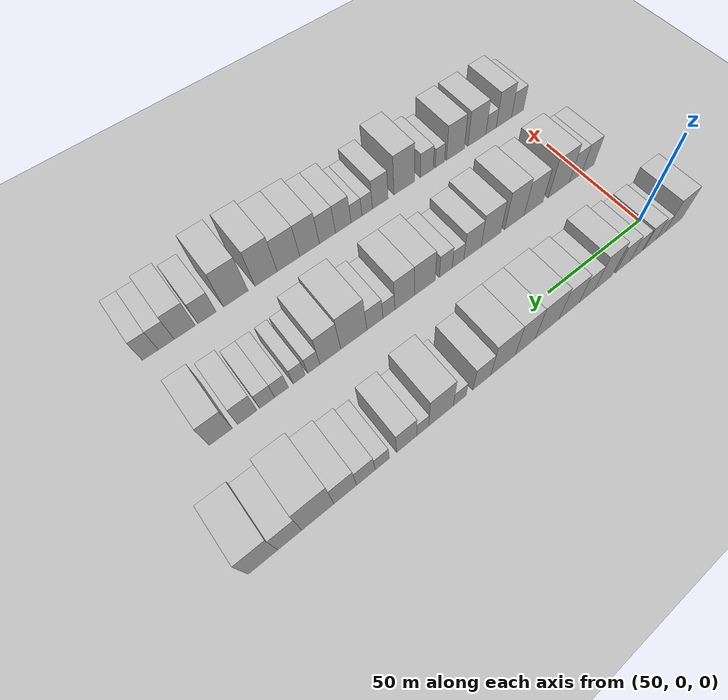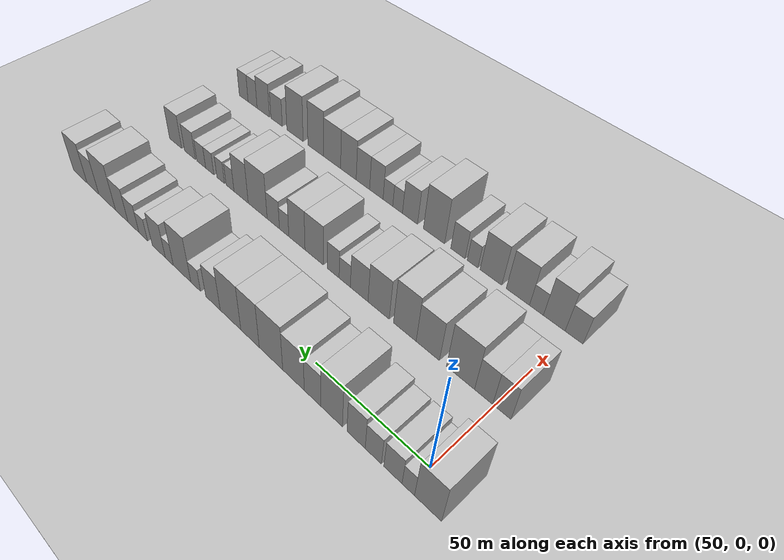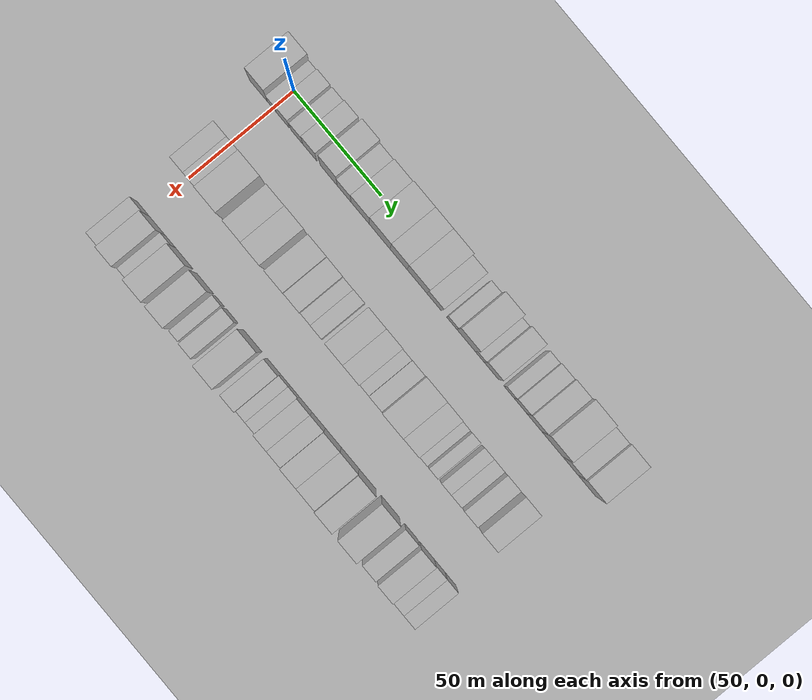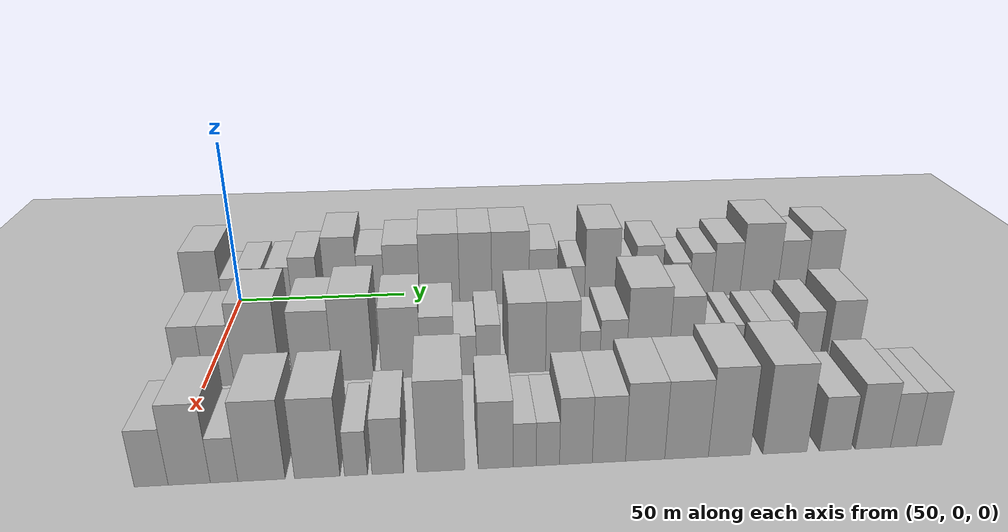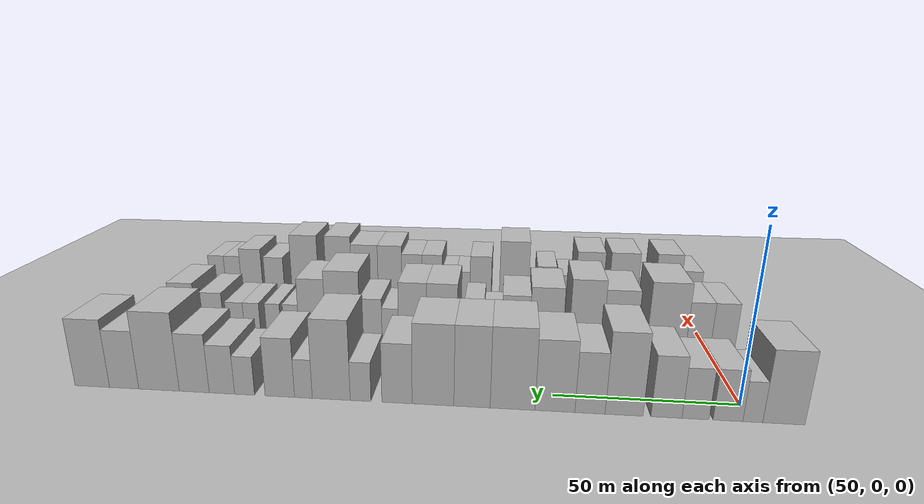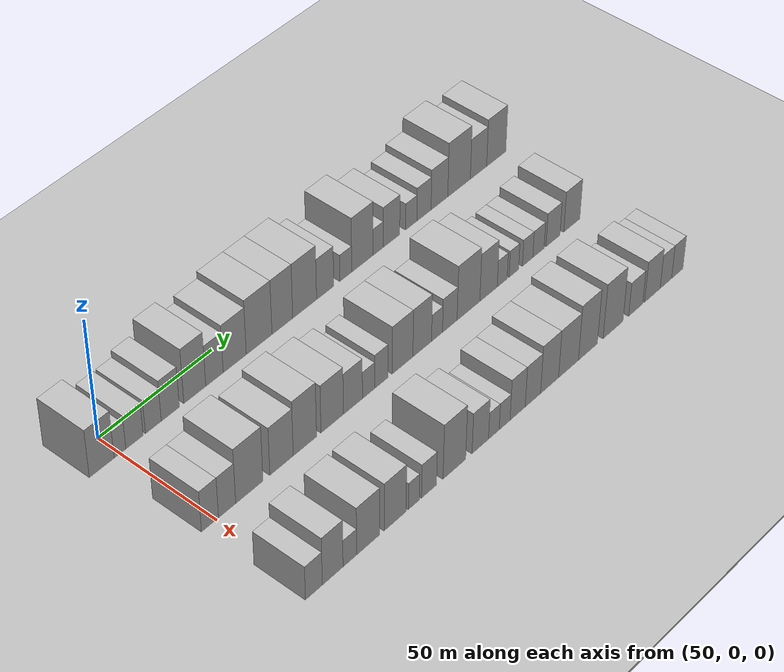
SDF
<sdf version="1.6">
 <world name="default">
  <include><name>ground_plane_1</name><uri>model://HANNAS_ground_plane</uri></include>
  <include>
   <name>ground_plane_2</name>
   <uri>model://HANNAS_ground_plane</uri>
   <pose>100 0 0  0 0 0</pose>
  </include>
  <model name="building_43">
   <static>1</static>
   <pose>50.0000 -8.0024 0 0.000000 0.000000 0.000000</pose>
   <link name="link">
    <pose>0 0 10.50 0 0 0</pose>
    <collision name="collision"><geometry><box><size>20.0000 10.3731 21.0000</size></box></geometry></collision>
    <visual name="visual">
     <cast_shadows>0</cast_shadows>
     <geometry><box><size>20.0000 10.3731 21.0000</size></box></geometry>
     <material>
      <script>
       <uri>model://HANNAS_wall/materials/scripts</uri>
       <uri>model://HANNAS_wall/materials/textures</uri>
       <name>vrc/HANNAS_wall</name>
      </script>
     </material>
    </visual>
   </link>
  </model>
  <model name="building_44">
   <static>1</static>
   <pose>50.0000 -0.3466 0 0.000000 0.000000 0.000000</pose>
   <link name="link">
    <pose>0 0 6.00 0 0 0</pose>
    <collision name="collision"><geometry><box><size>20.0000 4.9386 12.0000</size></box></geometry></collision>
    <visual name="visual">
     <cast_shadows>0</cast_shadows>
     <geometry><box><size>20.0000 4.9386 12.0000</size></box></geometry>
     <material>
      <script>
       <uri>model://HANNAS_wall/materials/scripts</uri>
       <uri>model://HANNAS_wall/materials/textures</uri>
       <name>vrc/HANNAS_wall</name>
      </script>
     </material>
    </visual>
   </link>
  </model>
  <model name="building_45">
   <static>1</static>
   <pose>50.0000 5.8194 0 0.000000 0.000000 0.000000</pose>
   <link name="link">
    <pose>0 0 7.50 0 0 0</pose>
    <collision name="collision"><geometry><box><size>20.0000 7.3933 15.0000</size></box></geometry></collision>
    <visual name="visual">
     <cast_shadows>0</cast_shadows>
     <geometry><box><size>20.0000 7.3933 15.0000</size></box></geometry>
     <material>
      <script>
       <uri>model://HANNAS_wall/materials/scripts</uri>
       <uri>model://HANNAS_wall/materials/textures</uri>
       <name>vrc/HANNAS_wall</name>
      </script>
     </material>
    </visual>
   </link>
  </model>
  <model name="building_46">
   <static>1</static>
   <pose>50.0000 13.9257 0 0.000000 0.000000 0.000000</pose>
   <link name="link">
    <pose>0 0 7.50 0 0 0</pose>
    <collision name="collision"><geometry><box><size>20.0000 6.8193 15.0000</size></box></geometry></collision>
    <visual name="visual">
     <cast_shadows>0</cast_shadows>
     <geometry><box><size>20.0000 6.8193 15.0000</size></box></geometry>
     <material>
      <script>
       <uri>model://HANNAS_wall/materials/scripts</uri>
       <uri>model://HANNAS_wall/materials/textures</uri>
       <name>vrc/HANNAS_wall</name>
      </script>
     </material>
    </visual>
   </link>
  </model>
  <model name="building_47">
   <static>1</static>
   <pose>50.0000 21.2796 0 0.000000 0.000000 0.000000</pose>
   <link name="link">
    <pose>0 0 9.00 0 0 0</pose>
    <collision name="collision"><geometry><box><size>20.0000 7.8884 18.0000</size></box></geometry></collision>
    <visual name="visual">
     <cast_shadows>0</cast_shadows>
     <geometry><box><size>20.0000 7.8884 18.0000</size></box></geometry>
     <material>
      <script>
       <uri>model://HANNAS_wall/materials/scripts</uri>
       <uri>model://HANNAS_wall/materials/textures</uri>
       <name>vrc/HANNAS_wall</name>
      </script>
     </material>
    </visual>
   </link>
  </model>
  <model name="building_48">
   <static>1</static>
   <pose>50.0000 32.0874 0 0.000000 0.000000 0.000000</pose>
   <link name="link">
    <pose>0 0 12.00 0 0 0</pose>
    <collision name="collision"><geometry><box><size>20.0000 9.7272 24.0000</size></box></geometry></collision>
    <visual name="visual">
     <cast_shadows>0</cast_shadows>
     <geometry><box><size>20.0000 9.7272 24.0000</size></box></geometry>
     <material>
      <script>
       <uri>model://HANNAS_wall/materials/scripts</uri>
       <uri>model://HANNAS_wall/materials/textures</uri>
       <name>vrc/HANNAS_wall</name>
      </script>
     </material>
    </visual>
   </link>
  </model>
  <model name="building_49">
   <static>1</static>
   <pose>50.0000 40.8598 0 0.000000 0.000000 0.000000</pose>
   <link name="link">
    <pose>0 0 9.00 0 0 0</pose>
    <collision name="collision"><geometry><box><size>20.0000 7.8177 18.0000</size></box></geometry></collision>
    <visual name="visual">
     <cast_shadows>0</cast_shadows>
     <geometry><box><size>20.0000 7.8177 18.0000</size></box></geometry>
     <material>
      <script>
       <uri>model://HANNAS_wall/materials/scripts</uri>
       <uri>model://HANNAS_wall/materials/textures</uri>
       <name>vrc/HANNAS_wall</name>
      </script>
     </material>
    </visual>
   </link>
  </model>
  <model name="building_50">
   <static>1</static>
   <pose>50.0000 49.9919 0 0.000000 0.000000 0.000000</pose>
   <link name="link">
    <pose>0 0 10.50 0 0 0</pose>
    <collision name="collision"><geometry><box><size>20.0000 10.4466 21.0000</size></box></geometry></collision>
    <visual name="visual">
     <cast_shadows>0</cast_shadows>
     <geometry><box><size>20.0000 10.4466 21.0000</size></box></geometry>
     <material>
      <script>
       <uri>model://HANNAS_wall/materials/scripts</uri>
       <uri>model://HANNAS_wall/materials/textures</uri>
       <name>vrc/HANNAS_wall</name>
      </script>
     </material>
    </visual>
   </link>
  </model>
  <model name="building_51">
   <static>1</static>
   <pose>50.0000 61.1554 0 0.000000 0.000000 0.000000</pose>
   <link name="link">
    <pose>0 0 12.00 0 0 0</pose>
    <collision name="collision"><geometry><box><size>20.0000 11.8803 24.0000</size></box></geometry></collision>
    <visual name="visual">
     <cast_shadows>0</cast_shadows>
     <geometry><box><size>20.0000 11.8803 24.0000</size></box></geometry>
     <material>
      <script>
       <uri>model://HANNAS_wall/materials/scripts</uri>
       <uri>model://HANNAS_wall/materials/textures</uri>
       <name>vrc/HANNAS_wall</name>
      </script>
     </material>
    </visual>
   </link>
  </model>
  <model name="building_52">
   <static>1</static>
   <pose>50.0000 71.9526 0 0.000000 0.000000 0.000000</pose>
   <link name="link">
    <pose>0 0 12.00 0 0 0</pose>
    <collision name="collision"><geometry><box><size>20.0000 9.7142 24.0000</size></box></geometry></collision>
    <visual name="visual">
     <cast_shadows>0</cast_shadows>
     <geometry><box><size>20.0000 9.7142 24.0000</size></box></geometry>
     <material>
      <script>
       <uri>model://HANNAS_wall/materials/scripts</uri>
       <uri>model://HANNAS_wall/materials/textures</uri>
       <name>vrc/HANNAS_wall</name>
      </script>
     </material>
    </visual>
   </link>
  </model>
  <model name="building_53">
   <static>1</static>
   <pose>50.0000 82.4688 0 0.000000 0.000000 0.000000</pose>
   <link name="link">
    <pose>0 0 12.00 0 0 0</pose>
    <collision name="collision"><geometry><box><size>20.0000 11.3181 24.0000</size></box></geometry></collision>
    <visual name="visual">
     <cast_shadows>0</cast_shadows>
     <geometry><box><size>20.0000 11.3181 24.0000</size></box></geometry>
     <material>
      <script>
       <uri>model://HANNAS_wall/materials/scripts</uri>
       <uri>model://HANNAS_wall/materials/textures</uri>
       <name>vrc/HANNAS_wall</name>
      </script>
     </material>
    </visual>
   </link>
  </model>
  <model name="building_54">
   <static>1</static>
   <pose>50.0000 92.2535 0 0.000000 0.000000 0.000000</pose>
   <link name="link">
    <pose>0 0 9.00 0 0 0</pose>
    <collision name="collision"><geometry><box><size>20.0000 8.2513 18.0000</size></box></geometry></collision>
    <visual name="visual">
     <cast_shadows>0</cast_shadows>
     <geometry><box><size>20.0000 8.2513 18.0000</size></box></geometry>
     <material>
      <script>
       <uri>model://HANNAS_wall/materials/scripts</uri>
       <uri>model://HANNAS_wall/materials/textures</uri>
       <name>vrc/HANNAS_wall</name>
      </script>
     </material>
    </visual>
   </link>
  </model>
  <model name="building_55">
   <static>1</static>
   <pose>50.0000 102.2474 0 0.000000 0.000000 0.000000</pose>
   <link name="link">
    <pose>0 0 6.00 0 0 0</pose>
    <collision name="collision"><geometry><box><size>20.0000 5.7366 12.0000</size></box></geometry></collision>
    <visual name="visual">
     <cast_shadows>0</cast_shadows>
     <geometry><box><size>20.0000 5.7366 12.0000</size></box></geometry>
     <material>
      <script>
       <uri>model://HANNAS_wall/materials/scripts</uri>
       <uri>model://HANNAS_wall/materials/textures</uri>
       <name>vrc/HANNAS_wall</name>
      </script>
     </material>
    </visual>
   </link>
  </model>
  <model name="building_56">
   <static>1</static>
   <pose>50.0000 110.4101 0 0.000000 0.000000 0.000000</pose>
   <link name="link">
    <pose>0 0 12.00 0 0 0</pose>
    <collision name="collision"><geometry><box><size>20.0000 10.5888 24.0000</size></box></geometry></collision>
    <visual name="visual">
     <cast_shadows>0</cast_shadows>
     <geometry><box><size>20.0000 10.5888 24.0000</size></box></geometry>
     <material>
      <script>
       <uri>model://HANNAS_wall/materials/scripts</uri>
       <uri>model://HANNAS_wall/materials/textures</uri>
       <name>vrc/HANNAS_wall</name>
      </script>
     </material>
    </visual>
   </link>
  </model>
  <model name="building_57">
   <static>1</static>
   <pose>50.0000 118.2001 0 0.000000 0.000000 0.000000</pose>
   <link name="link">
    <pose>0 0 6.00 0 0 0</pose>
    <collision name="collision"><geometry><box><size>20.0000 4.9912 12.0000</size></box></geometry></collision>
    <visual name="visual">
     <cast_shadows>0</cast_shadows>
     <geometry><box><size>20.0000 4.9912 12.0000</size></box></geometry>
     <material>
      <script>
       <uri>model://HANNAS_wall/materials/scripts</uri>
       <uri>model://HANNAS_wall/materials/textures</uri>
       <name>vrc/HANNAS_wall</name>
      </script>
     </material>
    </visual>
   </link>
  </model>
  <model name="building_58">
   <static>1</static>
   <pose>50.0000 124.8624 0 0.000000 0.000000 0.000000</pose>
   <link name="link">
    <pose>0 0 9.00 0 0 0</pose>
    <collision name="collision"><geometry><box><size>20.0000 8.3333 18.0000</size></box></geometry></collision>
    <visual name="visual">
     <cast_shadows>0</cast_shadows>
     <geometry><box><size>20.0000 8.3333 18.0000</size></box></geometry>
     <material>
      <script>
       <uri>model://HANNAS_wall/materials/scripts</uri>
       <uri>model://HANNAS_wall/materials/textures</uri>
       <name>vrc/HANNAS_wall</name>
      </script>
     </material>
    </visual>
   </link>
  </model>
  <model name="building_59">
   <static>1</static>
   <pose>50.0000 134.8798 0 0.000000 0.000000 0.000000</pose>
   <link name="link">
    <pose>0 0 6.00 0 0 0</pose>
    <collision name="collision"><geometry><box><size>20.0000 5.7014 12.0000</size></box></geometry></collision>
    <visual name="visual">
     <cast_shadows>0</cast_shadows>
     <geometry><box><size>20.0000 5.7014 12.0000</size></box></geometry>
     <material>
      <script>
       <uri>model://HANNAS_wall/materials/scripts</uri>
       <uri>model://HANNAS_wall/materials/textures</uri>
       <name>vrc/HANNAS_wall</name>
      </script>
     </material>
    </visual>
   </link>
  </model>
  <model name="building_60">
   <static>1</static>
   <pose>50.0000 141.3897 0 0.000000 0.000000 0.000000</pose>
   <link name="link">
    <pose>0 0 7.50 0 0 0</pose>
    <collision name="collision"><geometry><box><size>20.0000 7.3184 15.0000</size></box></geometry></collision>
    <visual name="visual">
     <cast_shadows>0</cast_shadows>
     <geometry><box><size>20.0000 7.3184 15.0000</size></box></geometry>
     <material>
      <script>
       <uri>model://HANNAS_wall/materials/scripts</uri>
       <uri>model://HANNAS_wall/materials/textures</uri>
       <name>vrc/HANNAS_wall</name>
      </script>
     </material>
    </visual>
   </link>
  </model>
  <model name="building_61">
   <static>1</static>
   <pose>50.0000 149.3910 0 0.000000 0.000000 0.000000</pose>
   <link name="link">
    <pose>0 0 9.00 0 0 0</pose>
    <collision name="collision"><geometry><box><size>20.0000 8.6843 18.0000</size></box></geometry></collision>
    <visual name="visual">
     <cast_shadows>0</cast_shadows>
     <geometry><box><size>20.0000 8.6843 18.0000</size></box></geometry>
     <material>
      <script>
       <uri>model://HANNAS_wall/materials/scripts</uri>
       <uri>model://HANNAS_wall/materials/textures</uri>
       <name>vrc/HANNAS_wall</name>
      </script>
     </material>
    </visual>
   </link>
  </model>
  <model name="building_62">
   <static>1</static>
   <pose>50.0000 159.6789 0 0.000000 0.000000 0.000000</pose>
   <link name="link">
    <pose>0 0 12.00 0 0 0</pose>
    <collision name="collision"><geometry><box><size>20.0000 11.8914 24.0000</size></box></geometry></collision>
    <visual name="visual">
     <cast_shadows>0</cast_shadows>
     <geometry><box><size>20.0000 11.8914 24.0000</size></box></geometry>
     <material>
      <script>
       <uri>model://HANNAS_wall/materials/scripts</uri>
       <uri>model://HANNAS_wall/materials/textures</uri>
       <name>vrc/HANNAS_wall</name>
      </script>
     </material>
    </visual>
   </link>
  </model>
  <model name="building_63">
   <static>1</static>
   <pose>50.0000 169.9664 0 0.000000 0.000000 0.000000</pose>
   <link name="link">
    <pose>0 0 9.00 0 0 0</pose>
    <collision name="collision"><geometry><box><size>20.0000 8.6837 18.0000</size></box></geometry></collision>
    <visual name="visual">
     <cast_shadows>0</cast_shadows>
     <geometry><box><size>20.0000 8.6837 18.0000</size></box></geometry>
     <material>
      <script>
       <uri>model://HANNAS_wall/materials/scripts</uri>
       <uri>model://HANNAS_wall/materials/textures</uri>
       <name>vrc/HANNAS_wall</name>
      </script>
     </material>
    </visual>
   </link>
  </model>
  <model name="building_64">
   <static>1</static>
   <pose>50.0000 179.4710 0 0.000000 0.000000 0.000000</pose>
   <link name="link">
    <pose>0 0 10.50 0 0 0</pose>
    <collision name="collision"><geometry><box><size>20.0000 10.3254 21.0000</size></box></geometry></collision>
    <visual name="visual">
     <cast_shadows>0</cast_shadows>
     <geometry><box><size>20.0000 10.3254 21.0000</size></box></geometry>
     <material>
      <script>
       <uri>model://HANNAS_wall/materials/scripts</uri>
       <uri>model://HANNAS_wall/materials/textures</uri>
       <name>vrc/HANNAS_wall</name>
      </script>
     </material>
    </visual>
   </link>
  </model>
  <model name="building_132">
   <static>1</static>
   <pose>90.0000 -2.9821 0 0.000000 0.000000 0.000000</pose>
   <link name="link">
    <pose>0 0 9.00 0 0 0</pose>
    <collision name="collision"><geometry><box><size>20.0000 7.2308 18.0000</size></box></geometry></collision>
    <visual name="visual">
     <cast_shadows>0</cast_shadows>
     <geometry><box><size>20.0000 7.2308 18.0000</size></box></geometry>
     <material>
      <script>
       <uri>model://HANNAS_wall/materials/scripts</uri>
       <uri>model://HANNAS_wall/materials/textures</uri>
       <name>vrc/HANNAS_wall</name>
      </script>
     </material>
    </visual>
   </link>
  </model>
  <model name="building_133">
   <static>1</static>
   <pose>90.0000 4.3099 0 0.000000 0.000000 0.000000</pose>
   <link name="link">
    <pose>0 0 9.00 0 0 0</pose>
    <collision name="collision"><geometry><box><size>20.0000 7.3531 18.0000</size></box></geometry></collision>
    <visual name="visual">
     <cast_shadows>0</cast_shadows>
     <geometry><box><size>20.0000 7.3531 18.0000</size></box></geometry>
     <material>
      <script>
       <uri>model://HANNAS_wall/materials/scripts</uri>
       <uri>model://HANNAS_wall/materials/textures</uri>
       <name>vrc/HANNAS_wall</name>
      </script>
     </material>
    </visual>
   </link>
  </model>
  <model name="building_134">
   <static>1</static>
   <pose>90.0000 13.9097 0 0.000000 0.000000 0.000000</pose>
   <link name="link">
    <pose>0 0 12.00 0 0 0</pose>
    <collision name="collision"><geometry><box><size>20.0000 11.8466 24.0000</size></box></geometry></collision>
    <visual name="visual">
     <cast_shadows>0</cast_shadows>
     <geometry><box><size>20.0000 11.8466 24.0000</size></box></geometry>
     <material>
      <script>
       <uri>model://HANNAS_wall/materials/scripts</uri>
       <uri>model://HANNAS_wall/materials/textures</uri>
       <name>vrc/HANNAS_wall</name>
      </script>
     </material>
    </visual>
   </link>
  </model>
  <model name="building_135">
   <static>1</static>
   <pose>90.0000 28.0158 0 0.000000 0.000000 0.000000</pose>
   <link name="link">
    <pose>0 0 10.50 0 0 0</pose>
    <collision name="collision"><geometry><box><size>20.0000 10.3656 21.0000</size></box></geometry></collision>
    <visual name="visual">
     <cast_shadows>0</cast_shadows>
     <geometry><box><size>20.0000 10.3656 21.0000</size></box></geometry>
     <material>
      <script>
       <uri>model://HANNAS_wall/materials/scripts</uri>
       <uri>model://HANNAS_wall/materials/textures</uri>
       <name>vrc/HANNAS_wall</name>
      </script>
     </material>
    </visual>
   </link>
  </model>
  <model name="building_136">
   <static>1</static>
   <pose>90.0000 38.4325 0 0.000000 0.000000 0.000000</pose>
   <link name="link">
    <pose>0 0 12.00 0 0 0</pose>
    <collision name="collision"><geometry><box><size>20.0000 10.4679 24.0000</size></box></geometry></collision>
    <visual name="visual">
     <cast_shadows>0</cast_shadows>
     <geometry><box><size>20.0000 10.4679 24.0000</size></box></geometry>
     <material>
      <script>
       <uri>model://HANNAS_wall/materials/scripts</uri>
       <uri>model://HANNAS_wall/materials/textures</uri>
       <name>vrc/HANNAS_wall</name>
      </script>
     </material>
    </visual>
   </link>
  </model>
  <model name="building_137">
   <static>1</static>
   <pose>90.0000 50.7974 0 0.000000 0.000000 0.000000</pose>
   <link name="link">
    <pose>0 0 10.50 0 0 0</pose>
    <collision name="collision"><geometry><box><size>20.0000 10.2619 21.0000</size></box></geometry></collision>
    <visual name="visual">
     <cast_shadows>0</cast_shadows>
     <geometry><box><size>20.0000 10.2619 21.0000</size></box></geometry>
     <material>
      <script>
       <uri>model://HANNAS_wall/materials/scripts</uri>
       <uri>model://HANNAS_wall/materials/textures</uri>
       <name>vrc/HANNAS_wall</name>
      </script>
     </material>
    </visual>
   </link>
  </model>
  <model name="building_138">
   <static>1</static>
   <pose>90.0000 60.3358 0 0.000000 0.000000 0.000000</pose>
   <link name="link">
    <pose>0 0 9.00 0 0 0</pose>
    <collision name="collision"><geometry><box><size>20.0000 8.8148 18.0000</size></box></geometry></collision>
    <visual name="visual">
     <cast_shadows>0</cast_shadows>
     <geometry><box><size>20.0000 8.8148 18.0000</size></box></geometry>
     <material>
      <script>
       <uri>model://HANNAS_wall/materials/scripts</uri>
       <uri>model://HANNAS_wall/materials/textures</uri>
       <name>vrc/HANNAS_wall</name>
      </script>
     </material>
    </visual>
   </link>
  </model>
  <model name="building_139">
   <static>1</static>
   <pose>90.0000 67.6227 0 0.000000 0.000000 0.000000</pose>
   <link name="link">
    <pose>0 0 6.00 0 0 0</pose>
    <collision name="collision"><geometry><box><size>20.0000 5.7589 12.0000</size></box></geometry></collision>
    <visual name="visual">
     <cast_shadows>0</cast_shadows>
     <geometry><box><size>20.0000 5.7589 12.0000</size></box></geometry>
     <material>
      <script>
       <uri>model://HANNAS_wall/materials/scripts</uri>
       <uri>model://HANNAS_wall/materials/textures</uri>
       <name>vrc/HANNAS_wall</name>
      </script>
     </material>
    </visual>
   </link>
  </model>
  <model name="building_140">
   <static>1</static>
   <pose>90.0000 73.6509 0 0.000000 0.000000 0.000000</pose>
   <link name="link">
    <pose>0 0 7.50 0 0 0</pose>
    <collision name="collision"><geometry><box><size>20.0000 6.2976 15.0000</size></box></geometry></collision>
    <visual name="visual">
     <cast_shadows>0</cast_shadows>
     <geometry><box><size>20.0000 6.2976 15.0000</size></box></geometry>
     <material>
      <script>
       <uri>model://HANNAS_wall/materials/scripts</uri>
       <uri>model://HANNAS_wall/materials/textures</uri>
       <name>vrc/HANNAS_wall</name>
      </script>
     </material>
    </visual>
   </link>
  </model>
  <model name="building_141">
   <static>1</static>
   <pose>90.0000 83.7573 0 0.000000 0.000000 0.000000</pose>
   <link name="link">
    <pose>0 0 10.50 0 0 0</pose>
    <collision name="collision"><geometry><box><size>20.0000 9.9152 21.0000</size></box></geometry></collision>
    <visual name="visual">
     <cast_shadows>0</cast_shadows>
     <geometry><box><size>20.0000 9.9152 21.0000</size></box></geometry>
     <material>
      <script>
       <uri>model://HANNAS_wall/materials/scripts</uri>
       <uri>model://HANNAS_wall/materials/textures</uri>
       <name>vrc/HANNAS_wall</name>
      </script>
     </material>
    </visual>
   </link>
  </model>
  <model name="building_142">
   <static>1</static>
   <pose>90.0000 93.2381 0 0.000000 0.000000 0.000000</pose>
   <link name="link">
    <pose>0 0 10.50 0 0 0</pose>
    <collision name="collision"><geometry><box><size>20.0000 9.0464 21.0000</size></box></geometry></collision>
    <visual name="visual">
     <cast_shadows>0</cast_shadows>
     <geometry><box><size>20.0000 9.0464 21.0000</size></box></geometry>
     <material>
      <script>
       <uri>model://HANNAS_wall/materials/scripts</uri>
       <uri>model://HANNAS_wall/materials/textures</uri>
       <name>vrc/HANNAS_wall</name>
      </script>
     </material>
    </visual>
   </link>
  </model>
  <model name="building_143">
   <static>1</static>
   <pose>90.0000 100.4512 0 0.000000 0.000000 0.000000</pose>
   <link name="link">
    <pose>0 0 6.00 0 0 0</pose>
    <collision name="collision"><geometry><box><size>20.0000 5.3796 12.0000</size></box></geometry></collision>
    <visual name="visual">
     <cast_shadows>0</cast_shadows>
     <geometry><box><size>20.0000 5.3796 12.0000</size></box></geometry>
     <material>
      <script>
       <uri>model://HANNAS_wall/materials/scripts</uri>
       <uri>model://HANNAS_wall/materials/textures</uri>
       <name>vrc/HANNAS_wall</name>
      </script>
     </material>
    </visual>
   </link>
  </model>
  <model name="building_144">
   <static>1</static>
   <pose>90.0000 106.7366 0 0.000000 0.000000 0.000000</pose>
   <link name="link">
    <pose>0 0 7.50 0 0 0</pose>
    <collision name="collision"><geometry><box><size>20.0000 7.1912 15.0000</size></box></geometry></collision>
    <visual name="visual">
     <cast_shadows>0</cast_shadows>
     <geometry><box><size>20.0000 7.1912 15.0000</size></box></geometry>
     <material>
      <script>
       <uri>model://HANNAS_wall/materials/scripts</uri>
       <uri>model://HANNAS_wall/materials/textures</uri>
       <name>vrc/HANNAS_wall</name>
      </script>
     </material>
    </visual>
   </link>
  </model>
  <model name="building_145">
   <static>1</static>
   <pose>90.0000 116.0403 0 0.000000 0.000000 0.000000</pose>
   <link name="link">
    <pose>0 0 12.00 0 0 0</pose>
    <collision name="collision"><geometry><box><size>20.0000 11.4162 24.0000</size></box></geometry></collision>
    <visual name="visual">
     <cast_shadows>0</cast_shadows>
     <geometry><box><size>20.0000 11.4162 24.0000</size></box></geometry>
     <material>
      <script>
       <uri>model://HANNAS_wall/materials/scripts</uri>
       <uri>model://HANNAS_wall/materials/textures</uri>
       <name>vrc/HANNAS_wall</name>
      </script>
     </material>
    </visual>
   </link>
  </model>
  <model name="building_146">
   <static>1</static>
   <pose>90.0000 126.1742 0 0.000000 0.000000 0.000000</pose>
   <link name="link">
    <pose>0 0 10.50 0 0 0</pose>
    <collision name="collision"><geometry><box><size>20.0000 8.8518 21.0000</size></box></geometry></collision>
    <visual name="visual">
     <cast_shadows>0</cast_shadows>
     <geometry><box><size>20.0000 8.8518 21.0000</size></box></geometry>
     <material>
      <script>
       <uri>model://HANNAS_wall/materials/scripts</uri>
       <uri>model://HANNAS_wall/materials/textures</uri>
       <name>vrc/HANNAS_wall</name>
      </script>
     </material>
    </visual>
   </link>
  </model>
  <model name="building_147">
   <static>1</static>
   <pose>90.0000 133.1425 0 0.000000 0.000000 0.000000</pose>
   <link name="link">
    <pose>0 0 6.00 0 0 0</pose>
    <collision name="collision"><geometry><box><size>20.0000 5.0846 12.0000</size></box></geometry></collision>
    <visual name="visual">
     <cast_shadows>0</cast_shadows>
     <geometry><box><size>20.0000 5.0846 12.0000</size></box></geometry>
     <material>
      <script>
       <uri>model://HANNAS_wall/materials/scripts</uri>
       <uri>model://HANNAS_wall/materials/textures</uri>
       <name>vrc/HANNAS_wall</name>
      </script>
     </material>
    </visual>
   </link>
  </model>
  <model name="building_148">
   <static>1</static>
   <pose>90.0000 139.1372 0 0.000000 0.000000 0.000000</pose>
   <link name="link">
    <pose>0 0 6.00 0 0 0</pose>
    <collision name="collision"><geometry><box><size>20.0000 4.9049 12.0000</size></box></geometry></collision>
    <visual name="visual">
     <cast_shadows>0</cast_shadows>
     <geometry><box><size>20.0000 4.9049 12.0000</size></box></geometry>
     <material>
      <script>
       <uri>model://HANNAS_wall/materials/scripts</uri>
       <uri>model://HANNAS_wall/materials/textures</uri>
       <name>vrc/HANNAS_wall</name>
      </script>
     </material>
    </visual>
   </link>
  </model>
  <model name="building_149">
   <static>1</static>
   <pose>90.0000 146.3164 0 0.000000 0.000000 0.000000</pose>
   <link name="link">
    <pose>0 0 6.00 0 0 0</pose>
    <collision name="collision"><geometry><box><size>20.0000 5.4536 12.0000</size></box></geometry></collision>
    <visual name="visual">
     <cast_shadows>0</cast_shadows>
     <geometry><box><size>20.0000 5.4536 12.0000</size></box></geometry>
     <material>
      <script>
       <uri>model://HANNAS_wall/materials/scripts</uri>
       <uri>model://HANNAS_wall/materials/textures</uri>
       <name>vrc/HANNAS_wall</name>
      </script>
     </material>
    </visual>
   </link>
  </model>
  <model name="building_150">
   <static>1</static>
   <pose>90.0000 152.0095 0 0.000000 0.000000 0.000000</pose>
   <link name="link">
    <pose>0 0 6.00 0 0 0</pose>
    <collision name="collision"><geometry><box><size>20.0000 5.9326 12.0000</size></box></geometry></collision>
    <visual name="visual">
     <cast_shadows>0</cast_shadows>
     <geometry><box><size>20.0000 5.9326 12.0000</size></box></geometry>
     <material>
      <script>
       <uri>model://HANNAS_wall/materials/scripts</uri>
       <uri>model://HANNAS_wall/materials/textures</uri>
       <name>vrc/HANNAS_wall</name>
      </script>
     </material>
    </visual>
   </link>
  </model>
  <model name="building_151">
   <static>1</static>
   <pose>90.0000 159.7069 0 0.000000 0.000000 0.000000</pose>
   <link name="link">
    <pose>0 0 7.50 0 0 0</pose>
    <collision name="collision"><geometry><box><size>20.0000 7.4622 15.0000</size></box></geometry></collision>
    <visual name="visual">
     <cast_shadows>0</cast_shadows>
     <geometry><box><size>20.0000 7.4622 15.0000</size></box></geometry>
     <material>
      <script>
       <uri>model://HANNAS_wall/materials/scripts</uri>
       <uri>model://HANNAS_wall/materials/textures</uri>
       <name>vrc/HANNAS_wall</name>
      </script>
     </material>
    </visual>
   </link>
  </model>
  <model name="building_152">
   <static>1</static>
   <pose>90.0000 169.7661 0 0.000000 0.000000 0.000000</pose>
   <link name="link">
    <pose>0 0 9.00 0 0 0</pose>
    <collision name="collision"><geometry><box><size>20.0000 8.6562 18.0000</size></box></geometry></collision>
    <visual name="visual">
     <cast_shadows>0</cast_shadows>
     <geometry><box><size>20.0000 8.6562 18.0000</size></box></geometry>
     <material>
      <script>
       <uri>model://HANNAS_wall/materials/scripts</uri>
       <uri>model://HANNAS_wall/materials/textures</uri>
       <name>vrc/HANNAS_wall</name>
      </script>
     </material>
    </visual>
   </link>
  </model>
  <model name="building_217">
   <static>1</static>
   <pose>130.0000 -1.9404 0 0.000000 0.000000 0.000000</pose>
   <link name="link">
    <pose>0 0 7.50 0 0 0</pose>
    <collision name="collision"><geometry><box><size>20.0000 7.1936 15.0000</size></box></geometry></collision>
    <visual name="visual">
     <cast_shadows>0</cast_shadows>
     <geometry><box><size>20.0000 7.1936 15.0000</size></box></geometry>
     <material>
      <script>
       <uri>model://HANNAS_wall/materials/scripts</uri>
       <uri>model://HANNAS_wall/materials/textures</uri>
       <name>vrc/HANNAS_wall</name>
      </script>
     </material>
    </visual>
   </link>
  </model>
  <model name="building_218">
   <static>1</static>
   <pose>130.0000 6.1424 0 0.000000 0.000000 0.000000</pose>
   <link name="link">
    <pose>0 0 10.50 0 0 0</pose>
    <collision name="collision"><geometry><box><size>20.0000 8.9720 21.0000</size></box></geometry></collision>
    <visual name="visual">
     <cast_shadows>0</cast_shadows>
     <geometry><box><size>20.0000 8.9720 21.0000</size></box></geometry>
     <material>
      <script>
       <uri>model://HANNAS_wall/materials/scripts</uri>
       <uri>model://HANNAS_wall/materials/textures</uri>
       <name>vrc/HANNAS_wall</name>
      </script>
     </material>
    </visual>
   </link>
  </model>
  <model name="building_219">
   <static>1</static>
   <pose>130.0000 13.5780 0 0.000000 0.000000 0.000000</pose>
   <link name="link">
    <pose>0 0 6.00 0 0 0</pose>
    <collision name="collision"><geometry><box><size>20.0000 5.8991 12.0000</size></box></geometry></collision>
    <visual name="visual">
     <cast_shadows>0</cast_shadows>
     <geometry><box><size>20.0000 5.8991 12.0000</size></box></geometry>
     <material>
      <script>
       <uri>model://HANNAS_wall/materials/scripts</uri>
       <uri>model://HANNAS_wall/materials/textures</uri>
       <name>vrc/HANNAS_wall</name>
      </script>
     </material>
    </visual>
   </link>
  </model>
  <model name="building_220">
   <static>1</static>
   <pose>130.0000 21.6178 0 0.000000 0.000000 0.000000</pose>
   <link name="link">
    <pose>0 0 10.50 0 0 0</pose>
    <collision name="collision"><geometry><box><size>20.0000 10.1805 21.0000</size></box></geometry></collision>
    <visual name="visual">
     <cast_shadows>0</cast_shadows>
     <geometry><box><size>20.0000 10.1805 21.0000</size></box></geometry>
     <material>
      <script>
       <uri>model://HANNAS_wall/materials/scripts</uri>
       <uri>model://HANNAS_wall/materials/textures</uri>
       <name>vrc/HANNAS_wall</name>
      </script>
     </material>
    </visual>
   </link>
  </model>
  <model name="building_221">
   <static>1</static>
   <pose>130.0000 33.6551 0 0.000000 0.000000 0.000000</pose>
   <link name="link">
    <pose>0 0 10.50 0 0 0</pose>
    <collision name="collision"><geometry><box><size>20.0000 9.8941 21.0000</size></box></geometry></collision>
    <visual name="visual">
     <cast_shadows>0</cast_shadows>
     <geometry><box><size>20.0000 9.8941 21.0000</size></box></geometry>
     <material>
      <script>
       <uri>model://HANNAS_wall/materials/scripts</uri>
       <uri>model://HANNAS_wall/materials/textures</uri>
       <name>vrc/HANNAS_wall</name>
      </script>
     </material>
    </visual>
   </link>
  </model>
  <model name="building_222">
   <static>1</static>
   <pose>130.0000 42.1148 0 0.000000 0.000000 0.000000</pose>
   <link name="link">
    <pose>0 0 6.00 0 0 0</pose>
    <collision name="collision"><geometry><box><size>20.0000 5.0253 12.0000</size></box></geometry></collision>
    <visual name="visual">
     <cast_shadows>0</cast_shadows>
     <geometry><box><size>20.0000 5.0253 12.0000</size></box></geometry>
     <material>
      <script>
       <uri>model://HANNAS_wall/materials/scripts</uri>
       <uri>model://HANNAS_wall/materials/textures</uri>
       <name>vrc/HANNAS_wall</name>
      </script>
     </material>
    </visual>
   </link>
  </model>
  <model name="building_223">
   <static>1</static>
   <pose>130.0000 49.0803 0 0.000000 0.000000 0.000000</pose>
   <link name="link">
    <pose>0 0 7.50 0 0 0</pose>
    <collision name="collision"><geometry><box><size>20.0000 6.9057 15.0000</size></box></geometry></collision>
    <visual name="visual">
     <cast_shadows>0</cast_shadows>
     <geometry><box><size>20.0000 6.9057 15.0000</size></box></geometry>
     <material>
      <script>
       <uri>model://HANNAS_wall/materials/scripts</uri>
       <uri>model://HANNAS_wall/materials/textures</uri>
       <name>vrc/HANNAS_wall</name>
      </script>
     </material>
    </visual>
   </link>
  </model>
  <model name="building_224">
   <static>1</static>
   <pose>130.0000 60.8387 0 0.000000 0.000000 0.000000</pose>
   <link name="link">
    <pose>0 0 12.00 0 0 0</pose>
    <collision name="collision"><geometry><box><size>20.0000 10.6110 24.0000</size></box></geometry></collision>
    <visual name="visual">
     <cast_shadows>0</cast_shadows>
     <geometry><box><size>20.0000 10.6110 24.0000</size></box></geometry>
     <material>
      <script>
       <uri>model://HANNAS_wall/materials/scripts</uri>
       <uri>model://HANNAS_wall/materials/textures</uri>
       <name>vrc/HANNAS_wall</name>
      </script>
     </material>
    </visual>
   </link>
  </model>
  <model name="building_225">
   <static>1</static>
   <pose>130.0000 73.0714 0 0.000000 0.000000 0.000000</pose>
   <link name="link">
    <pose>0 0 9.00 0 0 0</pose>
    <collision name="collision"><geometry><box><size>20.0000 7.8543 18.0000</size></box></geometry></collision>
    <visual name="visual">
     <cast_shadows>0</cast_shadows>
     <geometry><box><size>20.0000 7.8543 18.0000</size></box></geometry>
     <material>
      <script>
       <uri>model://HANNAS_wall/materials/scripts</uri>
       <uri>model://HANNAS_wall/materials/textures</uri>
       <name>vrc/HANNAS_wall</name>
      </script>
     </material>
    </visual>
   </link>
  </model>
  <model name="building_226">
   <static>1</static>
   <pose>130.0000 79.5684 0 0.000000 0.000000 0.000000</pose>
   <link name="link">
    <pose>0 0 6.00 0 0 0</pose>
    <collision name="collision"><geometry><box><size>20.0000 5.1398 12.0000</size></box></geometry></collision>
    <visual name="visual">
     <cast_shadows>0</cast_shadows>
     <geometry><box><size>20.0000 5.1398 12.0000</size></box></geometry>
     <material>
      <script>
       <uri>model://HANNAS_wall/materials/scripts</uri>
       <uri>model://HANNAS_wall/materials/textures</uri>
       <name>vrc/HANNAS_wall</name>
      </script>
     </material>
    </visual>
   </link>
  </model>
  <model name="building_227">
   <static>1</static>
   <pose>130.0000 84.7644 0 0.000000 0.000000 0.000000</pose>
   <link name="link">
    <pose>0 0 6.00 0 0 0</pose>
    <collision name="collision"><geometry><box><size>20.0000 5.2523 12.0000</size></box></geometry></collision>
    <visual name="visual">
     <cast_shadows>0</cast_shadows>
     <geometry><box><size>20.0000 5.2523 12.0000</size></box></geometry>
     <material>
      <script>
       <uri>model://HANNAS_wall/materials/scripts</uri>
       <uri>model://HANNAS_wall/materials/textures</uri>
       <name>vrc/HANNAS_wall</name>
      </script>
     </material>
    </visual>
   </link>
  </model>
  <model name="building_228">
   <static>1</static>
   <pose>130.0000 91.1052 0 0.000000 0.000000 0.000000</pose>
   <link name="link">
    <pose>0 0 9.00 0 0 0</pose>
    <collision name="collision"><geometry><box><size>20.0000 7.4293 18.0000</size></box></geometry></collision>
    <visual name="visual">
     <cast_shadows>0</cast_shadows>
     <geometry><box><size>20.0000 7.4293 18.0000</size></box></geometry>
     <material>
      <script>
       <uri>model://HANNAS_wall/materials/scripts</uri>
       <uri>model://HANNAS_wall/materials/textures</uri>
       <name>vrc/HANNAS_wall</name>
      </script>
     </material>
    </visual>
   </link>
  </model>
  <model name="building_229">
   <static>1</static>
   <pose>130.0000 98.6138 0 0.000000 0.000000 0.000000</pose>
   <link name="link">
    <pose>0 0 9.00 0 0 0</pose>
    <collision name="collision"><geometry><box><size>20.0000 7.5879 18.0000</size></box></geometry></collision>
    <visual name="visual">
     <cast_shadows>0</cast_shadows>
     <geometry><box><size>20.0000 7.5879 18.0000</size></box></geometry>
     <material>
      <script>
       <uri>model://HANNAS_wall/materials/scripts</uri>
       <uri>model://HANNAS_wall/materials/textures</uri>
       <name>vrc/HANNAS_wall</name>
      </script>
     </material>
    </visual>
   </link>
  </model>
  <model name="building_230">
   <static>1</static>
   <pose>130.0000 106.9142 0 0.000000 0.000000 0.000000</pose>
   <link name="link">
    <pose>0 0 10.50 0 0 0</pose>
    <collision name="collision"><geometry><box><size>20.0000 9.0129 21.0000</size></box></geometry></collision>
    <visual name="visual">
     <cast_shadows>0</cast_shadows>
     <geometry><box><size>20.0000 9.0129 21.0000</size></box></geometry>
     <material>
      <script>
       <uri>model://HANNAS_wall/materials/scripts</uri>
       <uri>model://HANNAS_wall/materials/textures</uri>
       <name>vrc/HANNAS_wall</name>
      </script>
     </material>
    </visual>
   </link>
  </model>
  <model name="building_231">
   <static>1</static>
   <pose>130.0000 116.4668 0 0.000000 0.000000 0.000000</pose>
   <link name="link">
    <pose>0 0 10.50 0 0 0</pose>
    <collision name="collision"><geometry><box><size>20.0000 10.0925 21.0000</size></box></geometry></collision>
    <visual name="visual">
     <cast_shadows>0</cast_shadows>
     <geometry><box><size>20.0000 10.0925 21.0000</size></box></geometry>
     <material>
      <script>
       <uri>model://HANNAS_wall/materials/scripts</uri>
       <uri>model://HANNAS_wall/materials/textures</uri>
       <name>vrc/HANNAS_wall</name>
      </script>
     </material>
    </visual>
   </link>
  </model>
  <model name="building_232">
   <static>1</static>
   <pose>130.0000 126.3704 0 0.000000 0.000000 0.000000</pose>
   <link name="link">
    <pose>0 0 12.00 0 0 0</pose>
    <collision name="collision"><geometry><box><size>20.0000 9.7147 24.0000</size></box></geometry></collision>
    <visual name="visual">
     <cast_shadows>0</cast_shadows>
     <geometry><box><size>20.0000 9.7147 24.0000</size></box></geometry>
     <material>
      <script>
       <uri>model://HANNAS_wall/materials/scripts</uri>
       <uri>model://HANNAS_wall/materials/textures</uri>
       <name>vrc/HANNAS_wall</name>
      </script>
     </material>
    </visual>
   </link>
  </model>
  <model name="building_233">
   <static>1</static>
   <pose>130.0000 139.4130 0 0.000000 0.000000 0.000000</pose>
   <link name="link">
    <pose>0 0 12.00 0 0 0</pose>
    <collision name="collision"><geometry><box><size>20.0000 10.3706 24.0000</size></box></geometry></collision>
    <visual name="visual">
     <cast_shadows>0</cast_shadows>
     <geometry><box><size>20.0000 10.3706 24.0000</size></box></geometry>
     <material>
      <script>
       <uri>model://HANNAS_wall/materials/scripts</uri>
       <uri>model://HANNAS_wall/materials/textures</uri>
       <name>vrc/HANNAS_wall</name>
      </script>
     </material>
    </visual>
   </link>
  </model>
  <model name="building_234">
   <static>1</static>
   <pose>130.0000 151.3448 0 0.000000 0.000000 0.000000</pose>
   <link name="link">
    <pose>0 0 7.50 0 0 0</pose>
    <collision name="collision"><geometry><box><size>20.0000 7.4929 15.0000</size></box></geometry></collision>
    <visual name="visual">
     <cast_shadows>0</cast_shadows>
     <geometry><box><size>20.0000 7.4929 15.0000</size></box></geometry>
     <material>
      <script>
       <uri>model://HANNAS_wall/materials/scripts</uri>
       <uri>model://HANNAS_wall/materials/textures</uri>
       <name>vrc/HANNAS_wall</name>
      </script>
     </material>
    </visual>
   </link>
  </model>
  <model name="building_235">
   <static>1</static>
   <pose>130.0000 160.2744 0 0.000000 0.000000 0.000000</pose>
   <link name="link">
    <pose>0 0 9.00 0 0 0</pose>
    <collision name="collision"><geometry><box><size>20.0000 8.3663 18.0000</size></box></geometry></collision>
    <visual name="visual">
     <cast_shadows>0</cast_shadows>
     <geometry><box><size>20.0000 8.3663 18.0000</size></box></geometry>
     <material>
      <script>
       <uri>model://HANNAS_wall/materials/scripts</uri>
       <uri>model://HANNAS_wall/materials/textures</uri>
       <name>vrc/HANNAS_wall</name>
      </script>
     </material>
    </visual>
   </link>
  </model>
  <model name="building_236">
   <static>1</static>
   <pose>130.0000 167.5632 0 0.000000 0.000000 0.000000</pose>
   <link name="link">
    <pose>0 0 7.50 0 0 0</pose>
    <collision name="collision"><geometry><box><size>20.0000 6.2113 15.0000</size></box></geometry></collision>
    <visual name="visual">
     <cast_shadows>0</cast_shadows>
     <geometry><box><size>20.0000 6.2113 15.0000</size></box></geometry>
     <material>
      <script>
       <uri>model://HANNAS_wall/materials/scripts</uri>
       <uri>model://HANNAS_wall/materials/textures</uri>
       <name>vrc/HANNAS_wall</name>
      </script>
     </material>
    </visual>
   </link>
  </model>
  <model name="building_237">
   <static>1</static>
   <pose>130.0000 173.7572 0 0.000000 0.000000 0.000000</pose>
   <link name="link">
    <pose>0 0 7.50 0 0 0</pose>
    <collision name="collision"><geometry><box><size>20.0000 6.1768 15.0000</size></box></geometry></collision>
    <visual name="visual">
     <cast_shadows>0</cast_shadows>
     <geometry><box><size>20.0000 6.1768 15.0000</size></box></geometry>
     <material>
      <script>
       <uri>model://HANNAS_wall/materials/scripts</uri>
       <uri>model://HANNAS_wall/materials/textures</uri>
       <name>vrc/HANNAS_wall</name>
      </script>
     </material>
    </visual>
   </link>
  </model>
 </world>
</sdf>
